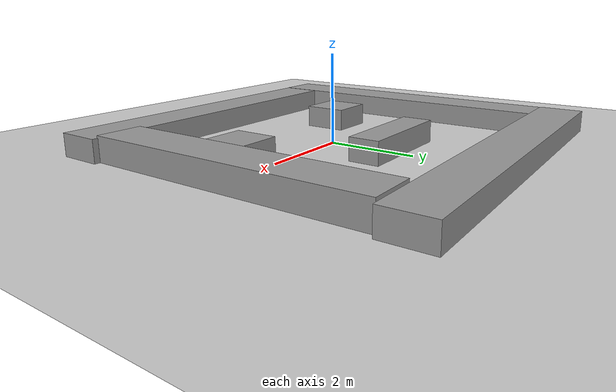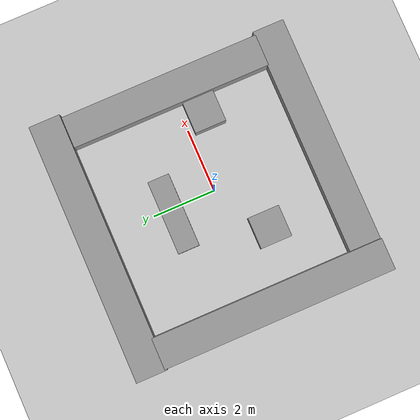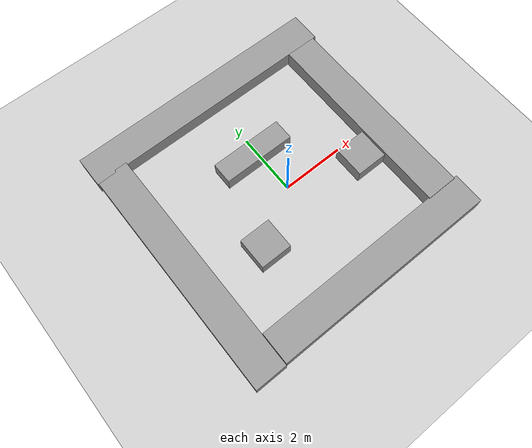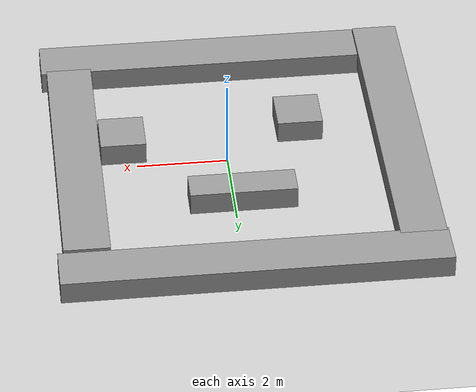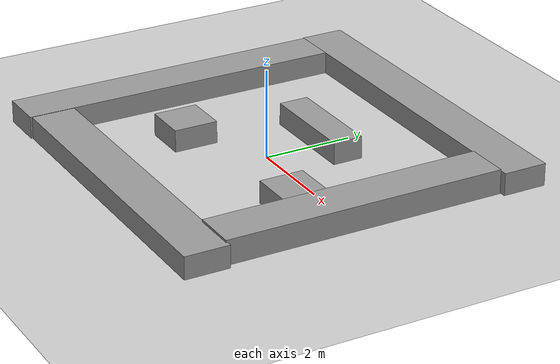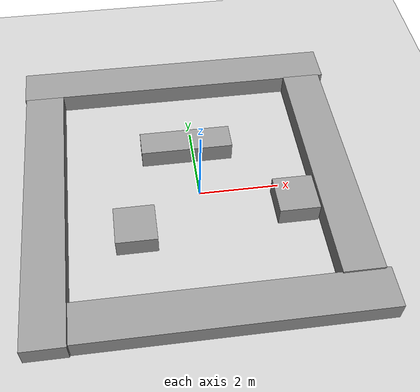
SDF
<?xml version="1.0"?>
<sdf version="1.4">
  <world name="myworld">
    <include>
      <uri>model://sun</uri>
    </include>

    <include>
      <uri>model://ground_plane</uri>
    </include>

    <model name='littlemap'>
      <link name='link_0'>
        <pose frame=''>-0.210234 3.88543 -0.006824 0 -0 0</pose>
        <inertial>
          <mass>8.29183</mass>
          <inertia>
            <ixx>1.38197</ixx>
            <ixy>0</ixy>
            <ixz>0</ixz>
            <iyy>48.1995</iyy>
            <iyz>0</iyz>
            <izz>48.1995</izz>
          </inertia>
          <pose frame=''>0 0 0 0 -0 0</pose>
        </inertial>
        <visual name='visual'>
          <pose frame=''>0 0 0 0 -0 0</pose>
          <geometry>
            <box>
              <size>8.29183 1 1</size>
            </box>
          </geometry>
          <material>
            <lighting>1</lighting>
            <script>
              <uri>file://media/materials/scripts/gazebo.material</uri>
              <name>Gazebo/Grey</name>
            </script>
            <ambient>0.3 0.3 0.3 1</ambient>
            <diffuse>0.7 0.7 0.7 1</diffuse>
            <specular>0.01 0.01 0.01 1</specular>
            <emissive>0 0 0 1</emissive>
          </material>
          <cast_shadows>1</cast_shadows>
          <transparency>0</transparency>
        </visual>
        <collision name='collision'>
          <laser_retro>0</laser_retro>
          <max_contacts>10</max_contacts>
          <pose frame=''>0 0 0 0 -0 0</pose>
          <geometry>
            <box>
              <size>8.29183 1 1</size>
            </box>
          </geometry>
          <surface>
            <friction>
              <ode>
                <mu>1</mu>
                <mu2>1</mu2>
                <fdir1>0 0 0</fdir1>
                <slip1>0</slip1>
                <slip2>0</slip2>
              </ode>
              <torsional>
                <coefficient>1</coefficient>
                <patch_radius>0</patch_radius>
                <surface_radius>0</surface_radius>
                <use_patch_radius>1</use_patch_radius>
                <ode>
                  <slip>0</slip>
                </ode>
              </torsional>
            </friction>
            <bounce>
              <restitution_coefficient>0</restitution_coefficient>
              <threshold>1e+06</threshold>
            </bounce>
            <contact>
              <collide_without_contact>0</collide_without_contact>
              <collide_without_contact_bitmask>1</collide_without_contact_bitmask>
              <collide_bitmask>1</collide_bitmask>
              <ode>
                <soft_cfm>0</soft_cfm>
                <soft_erp>0.2</soft_erp>
                <kp>1e+13</kp>
                <kd>1</kd>
                <max_vel>0.01</max_vel>
                <min_depth>0</min_depth>
              </ode>
              <bullet>
                <split_impulse>1</split_impulse>
                <split_impulse_penetration_threshold>-0.01</split_impulse_penetration_threshold>
                <soft_cfm>0</soft_cfm>
                <soft_erp>0.2</soft_erp>
                <kp>1e+13</kp>
                <kd>1</kd>
              </bullet>
            </contact>
          </surface>
        </collision>
      </link>
      <link name='link_1'>
        <pose frame=''>-3.82347 -0.269017 -0.006824 0 -0 0</pose>
        <inertial>
          <mass>7.46954</mass>
          <inertia>
            <ixx>35.3522</ixx>
            <ixy>0</ixy>
            <ixz>0</ixz>
            <iyy>1.24493</iyy>
            <iyz>0</iyz>
            <izz>35.3522</izz>
          </inertia>
          <pose frame=''>0 0 0 0 -0 0</pose>
        </inertial>
        <visual name='visual'>
          <pose frame=''>0 0 0 0 -0 0</pose>
          <geometry>
            <box>
              <size>1 7.46954 1</size>
            </box>
          </geometry>
          <material>
            <lighting>1</lighting>
            <script>
              <uri>file://media/materials/scripts/gazebo.material</uri>
              <name>Gazebo/Grey</name>
            </script>
            <ambient>0.3 0.3 0.3 1</ambient>
            <diffuse>0.7 0.7 0.7 1</diffuse>
            <specular>0.01 0.01 0.01 1</specular>
            <emissive>0 0 0 1</emissive>
          </material>
          <cast_shadows>1</cast_shadows>
          <transparency>0</transparency>
        </visual>
        <collision name='collision'>
          <laser_retro>0</laser_retro>
          <max_contacts>10</max_contacts>
          <pose frame=''>0 0 0 0 -0 0</pose>
          <geometry>
            <box>
              <size>1 7.46954 1</size>
            </box>
          </geometry>
          <surface>
            <friction>
              <ode>
                <mu>1</mu>
                <mu2>1</mu2>
                <fdir1>0 0 0</fdir1>
                <slip1>0</slip1>
                <slip2>0</slip2>
              </ode>
              <torsional>
                <coefficient>1</coefficient>
                <patch_radius>0</patch_radius>
                <surface_radius>0</surface_radius>
                <use_patch_radius>1</use_patch_radius>
                <ode>
                  <slip>0</slip>
                </ode>
              </torsional>
            </friction>
            <bounce>
              <restitution_coefficient>0</restitution_coefficient>
              <threshold>1e+06</threshold>
            </bounce>
            <contact>
              <collide_without_contact>0</collide_without_contact>
              <collide_without_contact_bitmask>1</collide_without_contact_bitmask>
              <collide_bitmask>1</collide_bitmask>
              <ode>
                <soft_cfm>0</soft_cfm>
                <soft_erp>0.2</soft_erp>
                <kp>1e+13</kp>
                <kd>1</kd>
                <max_vel>0.01</max_vel>
                <min_depth>0</min_depth>
              </ode>
              <bullet>
                <split_impulse>1</split_impulse>
                <split_impulse_penetration_threshold>-0.01</split_impulse_penetration_threshold>
                <soft_cfm>0</soft_cfm>
                <soft_erp>0.2</soft_erp>
                <kp>1e+13</kp>
                <kd>1</kd>
              </bullet>
            </contact>
          </surface>
        </collision>
      </link>
      <link name='link_2'>
        <pose frame=''>0.313466 -3.47161 -0.006824 0 -0 0</pose>
        <inertial>
          <mass>7.23943</mass>
          <inertia>
            <ixx>1.20657</ixx>
            <ixy>0</ixy>
            <ixz>0</ixz>
            <iyy>32.2211</iyy>
            <iyz>0</iyz>
            <izz>32.2211</izz>
          </inertia>
          <pose frame=''>0 0 0 0 -0 0</pose>
        </inertial>
        <visual name='visual'>
          <pose frame=''>0 0 0 0 -0 0</pose>
          <geometry>
            <box>
              <size>7.23942 1 1</size>
            </box>
          </geometry>
          <material>
            <lighting>1</lighting>
            <script>
              <uri>file://media/materials/scripts/gazebo.material</uri>
              <name>Gazebo/Grey</name>
            </script>
            <ambient>0.3 0.3 0.3 1</ambient>
            <diffuse>0.7 0.7 0.7 1</diffuse>
            <specular>0.01 0.01 0.01 1</specular>
            <emissive>0 0 0 1</emissive>
          </material>
          <cast_shadows>1</cast_shadows>
          <transparency>0</transparency>
        </visual>
        <collision name='collision'>
          <laser_retro>0</laser_retro>
          <max_contacts>10</max_contacts>
          <pose frame=''>0 0 0 0 -0 0</pose>
          <geometry>
            <box>
              <size>7.23942 1 1</size>
            </box>
          </geometry>
          <surface>
            <friction>
              <ode>
                <mu>1</mu>
                <mu2>1</mu2>
                <fdir1>0 0 0</fdir1>
                <slip1>0</slip1>
                <slip2>0</slip2>
              </ode>
              <torsional>
                <coefficient>1</coefficient>
                <patch_radius>0</patch_radius>
                <surface_radius>0</surface_radius>
                <use_patch_radius>1</use_patch_radius>
                <ode>
                  <slip>0</slip>
                </ode>
              </torsional>
            </friction>
            <bounce>
              <restitution_coefficient>0</restitution_coefficient>
              <threshold>1e+06</threshold>
            </bounce>
            <contact>
              <collide_without_contact>0</collide_without_contact>
              <collide_without_contact_bitmask>1</collide_without_contact_bitmask>
              <collide_bitmask>1</collide_bitmask>
              <ode>
                <soft_cfm>0</soft_cfm>
                <soft_erp>0.2</soft_erp>
                <kp>1e+13</kp>
                <kd>1</kd>
                <max_vel>0.01</max_vel>
                <min_depth>0</min_depth>
              </ode>
              <bullet>
                <split_impulse>1</split_impulse>
                <split_impulse_penetration_threshold>-0.01</split_impulse_penetration_threshold>
                <soft_cfm>0</soft_cfm>
                <soft_erp>0.2</soft_erp>
                <kp>1e+13</kp>
                <kd>1</kd>
              </bullet>
            </contact>
          </surface>
        </collision>
      </link>
      <link name='link_3'>
        <pose frame=''>3.31101 0.178145 0.040944 0 -0 0</pose>
        <inertial>
          <mass>6.36769</mass>
          <inertia>
            <ixx>22.0469</ixx>
            <ixy>0</ixy>
            <ixz>0</ixz>
            <iyy>1.06128</iyy>
            <iyz>0</iyz>
            <izz>22.0469</izz>
          </inertia>
          <pose frame=''>0 0 0 0 -0 0</pose>
        </inertial>
        <visual name='visual'>
          <pose frame=''>0 0 0 0 -0 0</pose>
          <geometry>
            <box>
              <size>1 6.3677 1</size>
            </box>
          </geometry>
          <material>
            <lighting>1</lighting>
            <script>
              <uri>file://media/materials/scripts/gazebo.material</uri>
              <name>Gazebo/Grey</name>
            </script>
            <ambient>0.3 0.3 0.3 1</ambient>
            <diffuse>0.7 0.7 0.7 1</diffuse>
            <specular>0.01 0.01 0.01 1</specular>
            <emissive>0 0 0 1</emissive>
          </material>
          <cast_shadows>1</cast_shadows>
          <transparency>0</transparency>
        </visual>
        <collision name='collision'>
          <laser_retro>0</laser_retro>
          <max_contacts>10</max_contacts>
          <pose frame=''>0 0 0 0 -0 0</pose>
          <geometry>
            <box>
              <size>1 6.3677 1</size>
            </box>
          </geometry>
          <surface>
            <friction>
              <ode>
                <mu>1</mu>
                <mu2>1</mu2>
                <fdir1>0 0 0</fdir1>
                <slip1>0</slip1>
                <slip2>0</slip2>
              </ode>
              <torsional>
                <coefficient>1</coefficient>
                <patch_radius>0</patch_radius>
                <surface_radius>0</surface_radius>
                <use_patch_radius>1</use_patch_radius>
                <ode>
                  <slip>0</slip>
                </ode>
              </torsional>
            </friction>
            <bounce>
              <restitution_coefficient>0</restitution_coefficient>
              <threshold>1e+06</threshold>
            </bounce>
            <contact>
              <collide_without_contact>0</collide_without_contact>
              <collide_without_contact_bitmask>1</collide_without_contact_bitmask>
              <collide_bitmask>1</collide_bitmask>
              <ode>
                <soft_cfm>0</soft_cfm>
                <soft_erp>0.2</soft_erp>
                <kp>1e+13</kp>
                <kd>1</kd>
                <max_vel>0.01</max_vel>
                <min_depth>0</min_depth>
              </ode>
              <bullet>
                <split_impulse>1</split_impulse>
                <split_impulse_penetration_threshold>-0.01</split_impulse_penetration_threshold>
                <soft_cfm>0</soft_cfm>
                <soft_erp>0.2</soft_erp>
                <kp>1e+13</kp>
                <kd>1</kd>
              </bullet>
            </contact>
          </surface>
        </collision>
      </link>
      <link name='link_4'>
        <pose frame=''>-0.184564 1.41056 -0.006824 0 -0 0</pose>
        <inertial>
          <mass>1.58902</mass>
          <inertia>
            <ixx>0.193738</ixx>
            <ixy>0</ixy>
            <ixz>0</ixz>
            <iyy>0.854466</iyy>
            <iyz>0</iyz>
            <izz>0.783366</izz>
          </inertia>
          <pose frame=''>0 0 0 0 -0 0</pose>
        </inertial>
        <visual name='visual'>
          <pose frame=''>0 0 0 0 -0 0</pose>
          <geometry>
            <box>
              <size>2.33511 0.680482 1</size>
            </box>
          </geometry>
          <material>
            <lighting>1</lighting>
            <script>
              <uri>file://media/materials/scripts/gazebo.material</uri>
              <name>Gazebo/Grey</name>
            </script>
            <ambient>0.3 0.3 0.3 1</ambient>
            <diffuse>0.7 0.7 0.7 1</diffuse>
            <specular>0.01 0.01 0.01 1</specular>
            <emissive>0 0 0 1</emissive>
          </material>
          <cast_shadows>1</cast_shadows>
          <transparency>0</transparency>
        </visual>
        <collision name='collision'>
          <laser_retro>0</laser_retro>
          <max_contacts>10</max_contacts>
          <pose frame=''>0 0 0 0 -0 0</pose>
          <geometry>
            <box>
              <size>2.33511 0.680482 1</size>
            </box>
          </geometry>
          <surface>
            <friction>
              <ode>
                <mu>1</mu>
                <mu2>1</mu2>
                <fdir1>0 0 0</fdir1>
                <slip1>0</slip1>
                <slip2>0</slip2>
              </ode>
              <torsional>
                <coefficient>1</coefficient>
                <patch_radius>0</patch_radius>
                <surface_radius>0</surface_radius>
                <use_patch_radius>1</use_patch_radius>
                <ode>
                  <slip>0</slip>
                </ode>
              </torsional>
            </friction>
            <bounce>
              <restitution_coefficient>0</restitution_coefficient>
              <threshold>1e+06</threshold>
            </bounce>
            <contact>
              <collide_without_contact>0</collide_without_contact>
              <collide_without_contact_bitmask>1</collide_without_contact_bitmask>
              <collide_bitmask>1</collide_bitmask>
              <ode>
                <soft_cfm>0</soft_cfm>
                <soft_erp>0.2</soft_erp>
                <kp>1e+13</kp>
                <kd>1</kd>
                <max_vel>0.01</max_vel>
                <min_depth>0</min_depth>
              </ode>
              <bullet>
                <split_impulse>1</split_impulse>
                <split_impulse_penetration_threshold>-0.01</split_impulse_penetration_threshold>
                <soft_cfm>0</soft_cfm>
                <soft_erp>0.2</soft_erp>
                <kp>1e+13</kp>
                <kd>1</kd>
              </bullet>
            </contact>
          </surface>
        </collision>
      </link>
      <link name='link_5'>
        <pose frame=''>-1.68828 -1.07788 -0.006824 0 -0 0</pose>
        <inertial>
          <mass>1</mass>
          <inertia>
            <ixx>0.166667</ixx>
            <ixy>0</ixy>
            <ixz>0</ixz>
            <iyy>0.166667</iyy>
            <iyz>0</iyz>
            <izz>0.166667</izz>
          </inertia>
        </inertial>
        <visual name='visual'>
          <pose frame=''>0 0 0 0 -0 0</pose>
          <geometry>
            <box>
              <size>1 1 1</size>
            </box>
          </geometry>
          <material>
            <lighting>1</lighting>
            <script>
              <uri>file://media/materials/scripts/gazebo.material</uri>
              <name>Gazebo/Grey</name>
            </script>
            <ambient>0.3 0.3 0.3 1</ambient>
            <diffuse>0.7 0.7 0.7 1</diffuse>
            <specular>0.01 0.01 0.01 1</specular>
            <emissive>0 0 0 1</emissive>
          </material>
          <cast_shadows>1</cast_shadows>
          <transparency>0</transparency>
        </visual>
        <collision name='collision'>
          <laser_retro>0</laser_retro>
          <max_contacts>10</max_contacts>
          <pose frame=''>0 0 0 0 -0 0</pose>
          <geometry>
            <box>
              <size>1 1 1</size>
            </box>
          </geometry>
          <surface>
            <friction>
              <ode>
                <mu>1</mu>
                <mu2>1</mu2>
                <fdir1>0 0 0</fdir1>
                <slip1>0</slip1>
                <slip2>0</slip2>
              </ode>
              <torsional>
                <coefficient>1</coefficient>
                <patch_radius>0</patch_radius>
                <surface_radius>0</surface_radius>
                <use_patch_radius>1</use_patch_radius>
                <ode>
                  <slip>0</slip>
                </ode>
              </torsional>
            </friction>
            <bounce>
              <restitution_coefficient>0</restitution_coefficient>
              <threshold>1e+06</threshold>
            </bounce>
            <contact>
              <collide_without_contact>0</collide_without_contact>
              <collide_without_contact_bitmask>1</collide_without_contact_bitmask>
              <collide_bitmask>1</collide_bitmask>
              <ode>
                <soft_cfm>0</soft_cfm>
                <soft_erp>0.2</soft_erp>
                <kp>1e+13</kp>
                <kd>1</kd>
                <max_vel>0.01</max_vel>
                <min_depth>0</min_depth>
              </ode>
              <bullet>
                <split_impulse>1</split_impulse>
                <split_impulse_penetration_threshold>-0.01</split_impulse_penetration_threshold>
                <soft_cfm>0</soft_cfm>
                <soft_erp>0.2</soft_erp>
                <kp>1e+13</kp>
                <kd>1</kd>
              </bullet>
            </contact>
          </surface>
        </collision>
      </link>
      <link name='link_6'>
        <pose frame=''>2.28208 -0.655615 -0.006824 0 -0 0</pose>
        <inertial>
          <mass>1</mass>
          <inertia>
            <ixx>0.166667</ixx>
            <ixy>0</ixy>
            <ixz>0</ixz>
            <iyy>0.166667</iyy>
            <iyz>0</iyz>
            <izz>0.166667</izz>
          </inertia>
        </inertial>
        <visual name='visual'>
          <pose frame=''>0 0 0 0 -0 0</pose>
          <geometry>
            <box>
              <size>1 1 1</size>
            </box>
          </geometry>
          <material>
            <lighting>1</lighting>
            <script>
              <uri>file://media/materials/scripts/gazebo.material</uri>
              <name>Gazebo/Grey</name>
            </script>
            <ambient>0.3 0.3 0.3 1</ambient>
            <diffuse>0.7 0.7 0.7 1</diffuse>
            <specular>0.01 0.01 0.01 1</specular>
            <emissive>0 0 0 1</emissive>
          </material>
          <cast_shadows>1</cast_shadows>
          <transparency>0</transparency>
        </visual>
        <collision name='collision'>
          <laser_retro>0</laser_retro>
          <max_contacts>10</max_contacts>
          <pose frame=''>0 0 0 0 -0 0</pose>
          <geometry>
            <box>
              <size>1 1 1</size>
            </box>
          </geometry>
          <surface>
            <friction>
              <ode>
                <mu>1</mu>
                <mu2>1</mu2>
                <fdir1>0 0 0</fdir1>
                <slip1>0</slip1>
                <slip2>0</slip2>
              </ode>
              <torsional>
                <coefficient>1</coefficient>
                <patch_radius>0</patch_radius>
                <surface_radius>0</surface_radius>
                <use_patch_radius>1</use_patch_radius>
                <ode>
                  <slip>0</slip>
                </ode>
              </torsional>
            </friction>
            <bounce>
              <restitution_coefficient>0</restitution_coefficient>
              <threshold>1e+06</threshold>
            </bounce>
            <contact>
              <collide_without_contact>0</collide_without_contact>
              <collide_without_contact_bitmask>1</collide_without_contact_bitmask>
              <collide_bitmask>1</collide_bitmask>
              <ode>
                <soft_cfm>0</soft_cfm>
                <soft_erp>0.2</soft_erp>
                <kp>1e+13</kp>
                <kd>1</kd>
                <max_vel>0.01</max_vel>
                <min_depth>0</min_depth>
              </ode>
              <bullet>
                <split_impulse>1</split_impulse>
                <split_impulse_penetration_threshold>-0.01</split_impulse_penetration_threshold>
                <soft_cfm>0</soft_cfm>
                <soft_erp>0.2</soft_erp>
                <kp>1e+13</kp>
                <kd>1</kd>
              </bullet>
            </contact>
          </surface>
        </collision>
      </link>
      <static>1</static>
      <allow_auto_disable>1</allow_auto_disable>
    </model>
  </world>
</sdf>
